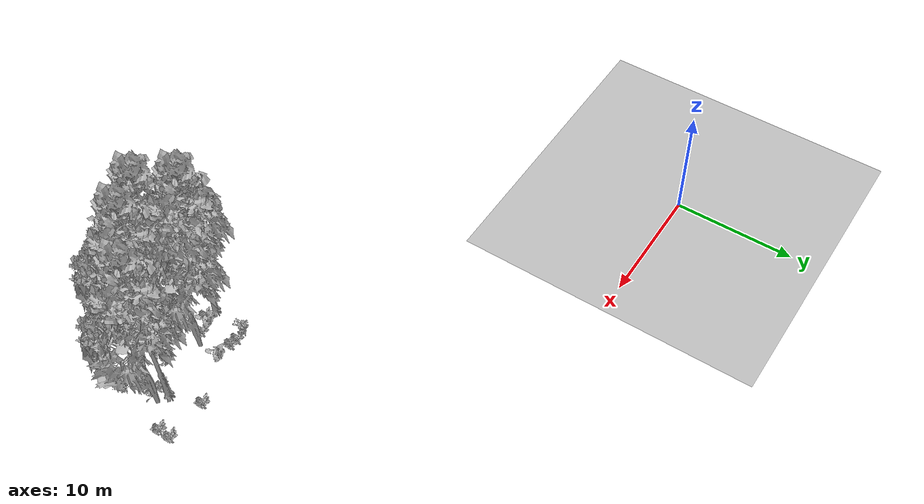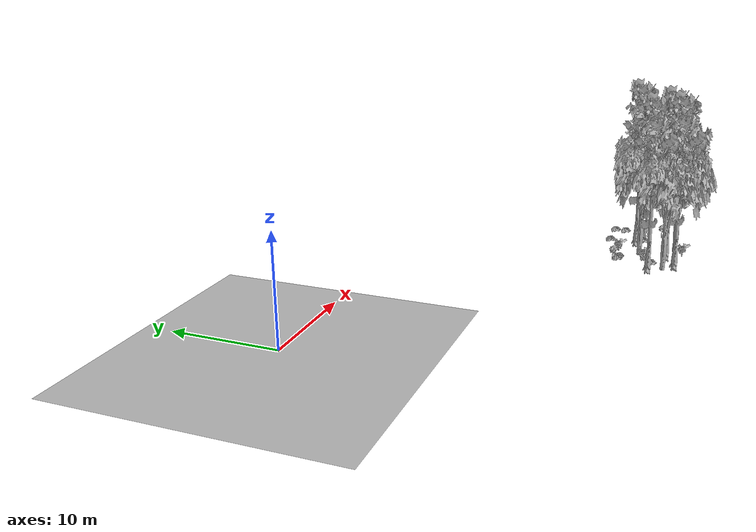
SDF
<sdf version="1.7">
 <world name="default">
  <model name="ground_plane">
   <static>1</static>
   <link name="link">
    <collision name="collision">
     <pose>-50 0 0 0 -0 0</pose>
     <geometry><plane><normal>0 0 1</normal><size>80 80</size></plane></geometry>
     <surface><contact><ode><min_depth>0.01</min_depth><max_vel>0</max_vel></ode></contact></surface>
    </collision>
    <visual name="grass">
     <cast_shadows>0</cast_shadows>
     <geometry>
      <mesh>
       <scale>0.46714285714285714 0.46714285714285714 0.1</scale>
       <uri>file://grass_plane/meshes/grass_plane.dae</uri>
      </mesh>
     </geometry>
    </visual>
   </link>
  </model>
  <model name="Tree 38">
   <static>1</static>
   <pose>36.190797623882716 -22.94871324768822 0 1.57079 -0 0</pose>
   <link name="link">
    <collision name="collision">
     <geometry><mesh><scale>3.5 5 3.5</scale><uri>model://tree_9/meshes/tree_9.obj</uri></mesh></geometry>
    </collision>
    <visual name="visual">
     <geometry><mesh><scale>3.5 5 3.5</scale><uri>model://tree_9/meshes/tree_9.obj</uri></mesh></geometry>
    </visual>
   </link>
  </model>
  <model name="Tree 182">
   <static>1</static>
   <pose>32.914355838374334 -26.45416535067295 0 1.57079 -0 0</pose>
   <link name="link">
    <collision name="collision">
     <geometry><mesh><scale>3.5 5 3.5</scale><uri>model://tree_9/meshes/tree_9.obj</uri></mesh></geometry>
    </collision>
    <visual name="visual">
     <geometry><mesh><scale>3.5 5 3.5</scale><uri>model://tree_9/meshes/tree_9.obj</uri></mesh></geometry>
    </visual>
   </link>
  </model>
  <model name="Tree 187">
   <static>1</static>
   <pose>37.01260890522934 -23.15473698899097 0 1.57079 -0 0</pose>
   <link name="link">
    <collision name="collision">
     <geometry><mesh><scale>3.5 5 3.5</scale><uri>model://tree_2/meshes/tree_2.obj</uri></mesh></geometry>
    </collision>
    <visual name="visual">
     <geometry><mesh><scale>3.5 5 3.5</scale><uri>model://tree_2/meshes/tree_2.obj</uri></mesh></geometry>
    </visual>
   </link>
  </model>
  <model name="Tree 390">
   <static>1</static>
   <pose>31.644452306127135 -23.878714055150887 0 1.57079 -0 0</pose>
   <link name="link">
    <collision name="collision">
     <geometry><mesh><scale>3.5 5 3.5</scale><uri>model://tree_2/meshes/tree_2.obj</uri></mesh></geometry>
    </collision>
    <visual name="visual">
     <geometry><mesh><scale>3.5 5 3.5</scale><uri>model://tree_2/meshes/tree_2.obj</uri></mesh></geometry>
    </visual>
   </link>
  </model>
  <model name="Tree 465">
   <static>1</static>
   <pose>33.611274354479406 -27.251053705981914 0 1.57079 -0 0</pose>
   <link name="link">
    <collision name="collision">
     <geometry><mesh><scale>3.5 5 3.5</scale><uri>model://tree_2/meshes/tree_2.obj</uri></mesh></geometry>
    </collision>
    <visual name="visual">
     <geometry><mesh><scale>3.5 5 3.5</scale><uri>model://tree_2/meshes/tree_2.obj</uri></mesh></geometry>
    </visual>
   </link>
  </model>
  <model name="Tree 502">
   <static>1</static>
   <pose>30.36389688028582 -27.534157423714475 0 1.57079 -0 0</pose>
   <link name="link">
    <collision name="collision">
     <geometry><mesh><scale>3.5 5 3.5</scale><uri>model://tree_9/meshes/tree_9.obj</uri></mesh></geometry>
    </collision>
    <visual name="visual">
     <geometry><mesh><scale>3.5 5 3.5</scale><uri>model://tree_9/meshes/tree_9.obj</uri></mesh></geometry>
    </visual>
   </link>
  </model>
  <model name="Tree 626">
   <static>1</static>
   <pose>28.0599273610667 -26.610495058003856 0 1.57079 -0 0</pose>
   <link name="link">
    <collision name="collision">
     <geometry><mesh><scale>3.5 5 3.5</scale><uri>model://tree_2/meshes/tree_2.obj</uri></mesh></geometry>
    </collision>
    <visual name="visual">
     <geometry><mesh><scale>3.5 5 3.5</scale><uri>model://tree_2/meshes/tree_2.obj</uri></mesh></geometry>
    </visual>
   </link>
  </model>
  <model name="Tree 635">
   <static>1</static>
   <pose>28.62200075075677 -25.13037735878634 0 1.57079 -0 0</pose>
   <link name="link">
    <collision name="collision">
     <geometry><mesh><scale>3.5 5 3.5</scale><uri>model://tree_9/meshes/tree_9.obj</uri></mesh></geometry>
    </collision>
    <visual name="visual">
     <geometry><mesh><scale>3.5 5 3.5</scale><uri>model://tree_9/meshes/tree_9.obj</uri></mesh></geometry>
    </visual>
   </link>
  </model>
  <model name="Bush 77">
   <static>1</static>
   <pose>29.452933982022145 -25.397724950647547 0 1.57079 -0 0</pose>
   <link name="link">
    <collision name="collision">
     <geometry><mesh><scale>2 2 2</scale><uri>model://bush_2/meshes/bush_2.obj</uri></mesh></geometry>
     <surface><contact><collide_without_contact>false</collide_without_contact></contact></surface>
    </collision>
    <visual name="visual">
     <geometry><mesh><scale>2 2 2</scale><uri>model://bush_2/meshes/bush_2.obj</uri></mesh></geometry>
    </visual>
   </link>
  </model>
  <model name="Bush 117">
   <static>1</static>
   <pose>32.675419911339375 -28.061423389738263 0 1.57079 -0 0</pose>
   <link name="link">
    <collision name="collision">
     <geometry><mesh><scale>2 2 2</scale><uri>model://bush_0/meshes/bush_0.obj</uri></mesh></geometry>
     <surface><contact><collide_without_contact>false</collide_without_contact></contact></surface>
    </collision>
    <visual name="visual">
     <geometry><mesh><scale>2 2 2</scale><uri>model://bush_0/meshes/bush_0.obj</uri></mesh></geometry>
    </visual>
   </link>
  </model>
  <model name="Bush 122">
   <static>1</static>
   <pose>32.10462248520818 -21.732213145424673 0 1.57079 -0 0</pose>
   <link name="link">
    <collision name="collision">
     <geometry><mesh><scale>2 2 2</scale><uri>model://bush_0/meshes/bush_0.obj</uri></mesh></geometry>
     <surface><contact><collide_without_contact>false</collide_without_contact></contact></surface>
    </collision>
    <visual name="visual">
     <geometry><mesh><scale>2 2 2</scale><uri>model://bush_0/meshes/bush_0.obj</uri></mesh></geometry>
    </visual>
   </link>
  </model>
  <model name="Bush 148">
   <static>1</static>
   <pose>38.717868744260514 -20.445805071400144 0 1.57079 -0 0</pose>
   <link name="link">
    <collision name="collision">
     <geometry><mesh><scale>2 2 2</scale><uri>model://bush_2/meshes/bush_2.obj</uri></mesh></geometry>
     <surface><contact><collide_without_contact>false</collide_without_contact></contact></surface>
    </collision>
    <visual name="visual">
     <geometry><mesh><scale>2 2 2</scale><uri>model://bush_2/meshes/bush_2.obj</uri></mesh></geometry>
    </visual>
   </link>
  </model>
  <model name="Bush 300">
   <static>1</static>
   <pose>37.012144363495054 -23.796873108283563 0 1.57079 -0 0</pose>
   <link name="link">
    <collision name="collision">
     <geometry><mesh><scale>2 2 2</scale><uri>model://bush_4/meshes/bush_4.obj</uri></mesh></geometry>
     <surface><contact><collide_without_contact>false</collide_without_contact></contact></surface>
    </collision>
    <visual name="visual">
     <geometry><mesh><scale>2 2 2</scale><uri>model://bush_4/meshes/bush_4.obj</uri></mesh></geometry>
    </visual>
   </link>
  </model>
  <model name="Bush 302">
   <static>1</static>
   <pose>35.947644775609476 -23.81649946027892 0 1.57079 -0 0</pose>
   <link name="link">
    <collision name="collision">
     <geometry><mesh><scale>2 2 2</scale><uri>model://bush_2/meshes/bush_2.obj</uri></mesh></geometry>
     <surface><contact><collide_without_contact>false</collide_without_contact></contact></surface>
    </collision>
    <visual name="visual">
     <geometry><mesh><scale>2 2 2</scale><uri>model://bush_2/meshes/bush_2.obj</uri></mesh></geometry>
    </visual>
   </link>
  </model>
  <model name="Bush 304">
   <static>1</static>
   <pose>30.225005356389957 -24.43255345636168 0 1.57079 -0 0</pose>
   <link name="link">
    <collision name="collision">
     <geometry><mesh><scale>2 2 2</scale><uri>model://bush_0/meshes/bush_0.obj</uri></mesh></geometry>
     <surface><contact><collide_without_contact>false</collide_without_contact></contact></surface>
    </collision>
    <visual name="visual">
     <geometry><mesh><scale>2 2 2</scale><uri>model://bush_0/meshes/bush_0.obj</uri></mesh></geometry>
    </visual>
   </link>
  </model>
  <model name="Bush 341">
   <static>1</static>
   <pose>30.69362380940862 -24.6645871425857 0 1.57079 -0 0</pose>
   <link name="link">
    <collision name="collision">
     <geometry><mesh><scale>2 2 2</scale><uri>model://bush_2/meshes/bush_2.obj</uri></mesh></geometry>
     <surface><contact><collide_without_contact>false</collide_without_contact></contact></surface>
    </collision>
    <visual name="visual">
     <geometry><mesh><scale>2 2 2</scale><uri>model://bush_2/meshes/bush_2.obj</uri></mesh></geometry>
    </visual>
   </link>
  </model>
  <model name="Bush 373">
   <static>1</static>
   <pose>30.381253059295858 -22.046323337783036 0 1.57079 -0 0</pose>
   <link name="link">
    <collision name="collision">
     <geometry><mesh><scale>2 2 2</scale><uri>model://bush_2/meshes/bush_2.obj</uri></mesh></geometry>
     <surface><contact><collide_without_contact>false</collide_without_contact></contact></surface>
    </collision>
    <visual name="visual">
     <geometry><mesh><scale>2 2 2</scale><uri>model://bush_2/meshes/bush_2.obj</uri></mesh></geometry>
    </visual>
   </link>
  </model>
  <model name="Bush 388">
   <static>1</static>
   <pose>29.287529414620536 -21.538536645560278 0 1.57079 -0 0</pose>
   <link name="link">
    <collision name="collision">
     <geometry><mesh><scale>2 2 2</scale><uri>model://bush_5/meshes/bush_5.obj</uri></mesh></geometry>
     <surface><contact><collide_without_contact>false</collide_without_contact></contact></surface>
    </collision>
    <visual name="visual">
     <geometry><mesh><scale>2 2 2</scale><uri>model://bush_5/meshes/bush_5.obj</uri></mesh></geometry>
    </visual>
   </link>
  </model>
  <model name="Bush 476">
   <static>1</static>
   <pose>29.7559955323984 -21.965644083155258 0 1.57079 -0 0</pose>
   <link name="link">
    <collision name="collision">
     <geometry><mesh><scale>2 2 2</scale><uri>model://bush_2/meshes/bush_2.obj</uri></mesh></geometry>
     <surface><contact><collide_without_contact>false</collide_without_contact></contact></surface>
    </collision>
    <visual name="visual">
     <geometry><mesh><scale>2 2 2</scale><uri>model://bush_2/meshes/bush_2.obj</uri></mesh></geometry>
    </visual>
   </link>
  </model>
  <model name="Bush 538">
   <static>1</static>
   <pose>37.80920773006993 -25.478307859777196 0 1.57079 -0 0</pose>
   <link name="link">
    <collision name="collision">
     <geometry><mesh><scale>2 2 2</scale><uri>model://bush_5/meshes/bush_5.obj</uri></mesh></geometry>
     <surface><contact><collide_without_contact>false</collide_without_contact></contact></surface>
    </collision>
    <visual name="visual">
     <geometry><mesh><scale>2 2 2</scale><uri>model://bush_5/meshes/bush_5.obj</uri></mesh></geometry>
    </visual>
   </link>
  </model>
  <model name="Bush 591">
   <static>1</static>
   <pose>35.35985811687941 -20.387642495168752 0 1.57079 -0 0</pose>
   <link name="link">
    <collision name="collision">
     <geometry><mesh><scale>2 2 2</scale><uri>model://bush_2/meshes/bush_2.obj</uri></mesh></geometry>
     <surface><contact><collide_without_contact>false</collide_without_contact></contact></surface>
    </collision>
    <visual name="visual">
     <geometry><mesh><scale>2 2 2</scale><uri>model://bush_2/meshes/bush_2.obj</uri></mesh></geometry>
    </visual>
   </link>
  </model>
  <model name="Bush 633">
   <static>1</static>
   <pose>38.691602379142196 -21.521654445027806 0 1.57079 -0 0</pose>
   <link name="link">
    <collision name="collision">
     <geometry><mesh><scale>2 2 2</scale><uri>model://bush_2/meshes/bush_2.obj</uri></mesh></geometry>
     <surface><contact><collide_without_contact>false</collide_without_contact></contact></surface>
    </collision>
    <visual name="visual">
     <geometry><mesh><scale>2 2 2</scale><uri>model://bush_2/meshes/bush_2.obj</uri></mesh></geometry>
    </visual>
   </link>
  </model>
 </world>
</sdf>
